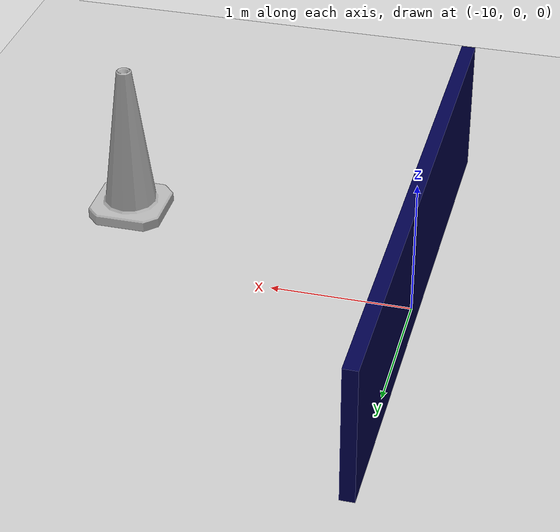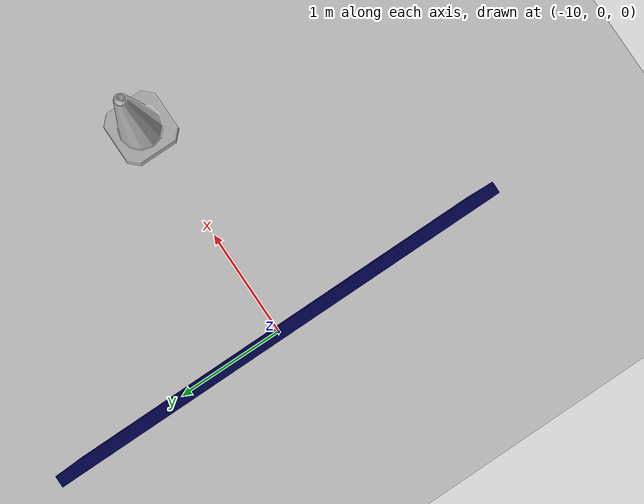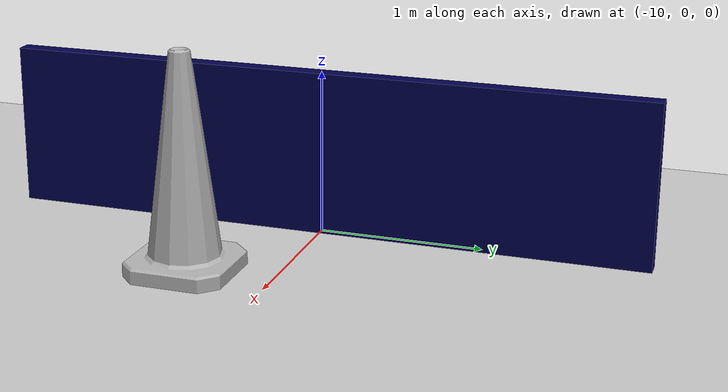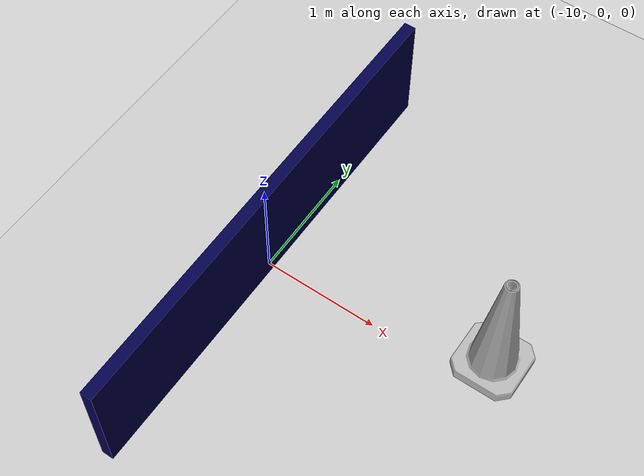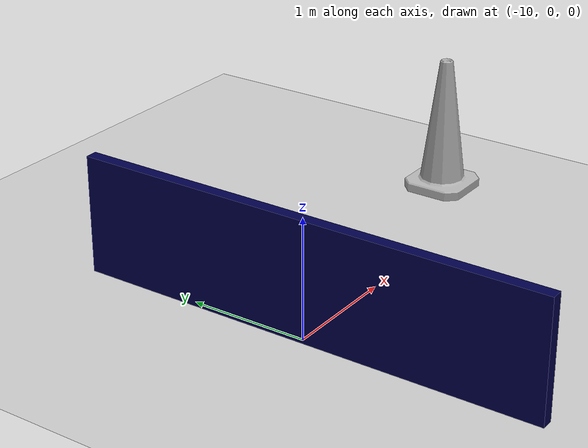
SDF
<?xml version="1.0" ?>
<sdf version="1.6">
  <world name="default">
    <include>
      <uri>model://ground_plane</uri>
    </include>
    <include>
      <uri>model://sun</uri>
    </include>
    <scene>
      <ambient>0.4 0.4 0.4 1</ambient>
      <background>0.5 0.7 1 1</background>
    </scene>

    <!-- Add a fixed wall -->
    <model name="wall">
      <pose>-10 0 0.5 0 0 0</pose>
      <link name="link">
        <collision name="collision">
          <geometry>
            <box><size>0.1 4 1</size></box>
          </geometry>
        </collision>
        <visual name="visual">
          <geometry>
            <box><size>0.1 4 1</size></box>
          </geometry>
          <material>
            <ambient>0 0 0.3 1</ambient>
            <diffuse>0 0 0.3 1</diffuse>
          </material>
        </visual>
      </link>
    </model>

    <!-- Adding an orange cone for detection -->
    <include>
    <uri>model://construction_cone</uri>
    <pose>-8 0 0.5 0 0 0</pose>
    </include>
  </world>
</sdf>

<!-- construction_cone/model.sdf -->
<sdf version="1.5">
  <model name="Construction Cone">
    <link name="link">
      <collision name="collision">
        <geometry>
          <mesh>
            <scale>10 10 10</scale>
            <uri>file://isr-testbed/construction_cone/meshes/construction_cone.dae</uri>
          </mesh>
        </geometry>
      </collision>
      <visual name="visual">
        <geometry>
          <mesh>
            <scale>10 10 10</scale>
            <uri>file://isr-testbed/construction_cone/meshes/construction_cone.dae</uri>
          </mesh>
        </geometry>
      </visual>
    </link>
  </model>
</sdf>
